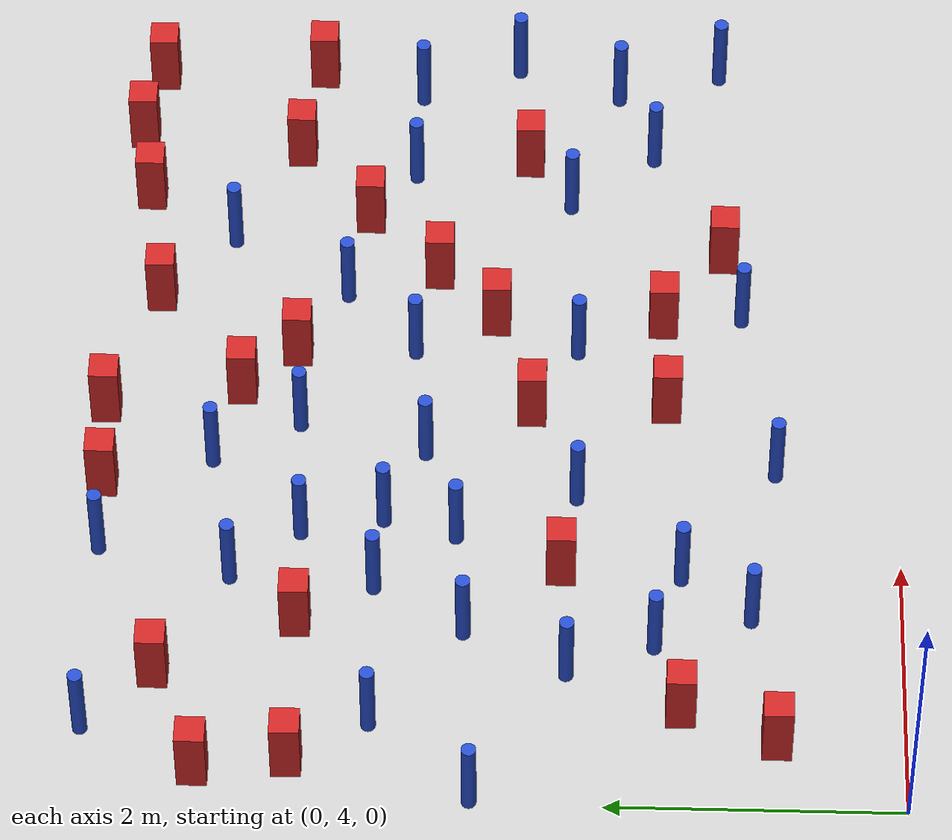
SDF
<sdf version="1.6">
 <world name="default">
  <model name="ground_plane">
   <static>1</static>
   <link name="link">
    <collision name="collision">
     <geometry><plane><normal>0 0 1</normal><size>100 100</size></plane></geometry>
     <surface><friction><ode><mu>100</mu><mu2>50</mu2></ode></friction></surface>
    </collision>
    <visual name="visual">
     <cast_shadows>0</cast_shadows>
     <geometry><plane><normal>0 0 1</normal><size>100 100</size></plane></geometry>
     <material>
      <ambient>1.0 1.0 1.0 1.0</ambient>
      <diffuse>0.8 0.8 0.8 1.0</diffuse>
      <specular>0.01 0.01 0.01 1.000000</specular>
     </material>
    </visual>
   </link>
  </model>
  <model name="pole_obstacle1">
   <static>true</static>
   <pose>1.38617735485 6.94967551149 7.38925637345e-09 -8.47170692799e-08 1.24976765033e-08 -1.74513093018e-07</pose>
   <link name="link">
    <pose>0 0 0.3 0 -0 0</pose>
    <inertial>
     <mass>1</mass>
     <inertia><ixx>0.145833</ixx><ixy>0</ixy><ixz>0</ixz><iyy>0.145833</iyy><iyz>0</iyz><izz>0.125</izz></inertia>
    </inertial>
    <collision name="collision">
     <geometry><cylinder><radius>0.05</radius><length>.6</length></cylinder></geometry>
    </collision>
    <visual name="visual">
     <geometry><cylinder><radius>0.05</radius><length>.6</length></cylinder></geometry>
     <material>
      <script><name>Gazebo/Blue</name><uri>file://media/materials/scripts/gazebo.material</uri></script>
     </material>
    </visual>
   </link>
  </model>
  <model name="pole_obstacle2">
   <static>true</static>
   <pose>2.82099505134 8.70505590829 7.38925637345e-09 -8.47170692793e-08 1.24976764408e-08 -1.74513093041e-07</pose>
   <link name="link">
    <pose>0 0 0.3 0 -0 0</pose>
    <inertial>
     <mass>1</mass>
     <inertia><ixx>0.145833</ixx><ixy>0</ixy><ixz>0</ixz><iyy>0.145833</iyy><iyz>0</iyz><izz>0.125</izz></inertia>
    </inertial>
    <collision name="collision">
     <geometry><cylinder><radius>0.05</radius><length>.6</length></cylinder></geometry>
    </collision>
    <visual name="visual">
     <geometry><cylinder><radius>0.05</radius><length>.6</length></cylinder></geometry>
     <material>
      <script><name>Gazebo/Blue</name><uri>file://media/materials/scripts/gazebo.material</uri></script>
     </material>
    </visual>
   </link>
  </model>
  <model name="square_post_obstacle6">
   <static>true</static>
   <pose>2.60345973972 9.44994082353 1.91545236811e-07 -7.35059704564e-06 1.12565212e-07 2.39332434364e-05</pose>
   <link name="link">
    <pose>0 0 0.25 0 -0 0</pose>
    <inertial>
     <mass>100</mass>
     <inertia>
      <ixx>0.166667</ixx>
      <ixy>0</ixy>
      <ixz>0</ixz>
      <iyy>0.166667</iyy>
      <iyz>0</iyz>
      <izz>0.166667</izz>
     </inertia>
    </inertial>
    <collision name="collision"><geometry><box><size>.2 .2 .5</size></box></geometry></collision>
    <visual name="visual">
     <geometry><box><size>.2 .2 .5</size></box></geometry>
     <material>
      <script><name>Gazebo/Red</name><uri>file://media/materials/scripts/gazebo.material</uri></script>
     </material>
    </visual>
   </link>
  </model>
  <model name="square_post_obstacle8">
   <static>true</static>
   <pose>1.90882104758 6.30090376429 1.91545236811e-07 -7.35059704564e-06 1.12565212e-07 2.39332434364e-05</pose>
   <link name="link">
    <pose>0 0 0.25 0 -0 0</pose>
    <inertial>
     <mass>100</mass>
     <inertia>
      <ixx>0.166667</ixx>
      <ixy>0</ixy>
      <ixz>0</ixz>
      <iyy>0.166667</iyy>
      <iyz>0</iyz>
      <izz>0.166667</izz>
     </inertia>
    </inertial>
    <collision name="collision"><geometry><box><size>.2 .2 .5</size></box></geometry></collision>
    <visual name="visual">
     <geometry><box><size>.2 .2 .5</size></box></geometry>
     <material>
      <script><name>Gazebo/Red</name><uri>file://media/materials/scripts/gazebo.material</uri></script>
     </material>
    </visual>
   </link>
  </model>
  <model name="pole_obstacle6">
   <static>true</static>
   <pose>5.6374758379 5.68235100578 7.38925637345e-09 -8.47170692796e-08 1.24976764786e-08 -1.74513093032e-07</pose>
   <link name="link">
    <pose>0 0 0.3 0 -0 0</pose>
    <inertial>
     <mass>1</mass>
     <inertia><ixx>0.145833</ixx><ixy>0</ixy><ixz>0</ixz><iyy>0.145833</iyy><iyz>0</iyz><izz>0.125</izz></inertia>
    </inertial>
    <collision name="collision">
     <geometry><cylinder><radius>0.05</radius><length>.6</length></cylinder></geometry>
    </collision>
    <visual name="visual">
     <geometry><cylinder><radius>0.05</radius><length>.6</length></cylinder></geometry>
     <material>
      <script><name>Gazebo/Blue</name><uri>file://media/materials/scripts/gazebo.material</uri></script>
     </material>
    </visual>
   </link>
  </model>
  <model name="square_post_obstacle15">
   <static>true</static>
   <pose>5.02085969405 7.69715390304 1.91545236811e-07 -7.35059704564e-06 1.12565212e-07 2.39332434364e-05</pose>
   <link name="link">
    <pose>0 0 0.25 0 -0 0</pose>
    <inertial>
     <mass>100</mass>
     <inertia>
      <ixx>0.166667</ixx>
      <ixy>0</ixy>
      <ixz>0</ixz>
      <iyy>0.166667</iyy>
      <iyz>0</iyz>
      <izz>0.166667</izz>
     </inertia>
    </inertial>
    <collision name="collision"><geometry><box><size>.2 .2 .5</size></box></geometry></collision>
    <visual name="visual">
     <geometry><box><size>.2 .2 .5</size></box></geometry>
     <material>
      <script><name>Gazebo/Red</name><uri>file://media/materials/scripts/gazebo.material</uri></script>
     </material>
    </visual>
   </link>
  </model>
  <model name="pole_obstacle11">
   <static>true</static>
   <pose>1.52577611234 5.01605634758 7.38925637345e-09 -8.47170692799e-08 1.24976765033e-08 -1.74513093018e-07</pose>
   <link name="link">
    <pose>0 0 0.3 0 -0 0</pose>
    <inertial>
     <mass>1</mass>
     <inertia><ixx>0.145833</ixx><ixy>0</ixy><ixz>0</ixz><iyy>0.145833</iyy><iyz>0</iyz><izz>0.125</izz></inertia>
    </inertial>
    <collision name="collision">
     <geometry><cylinder><radius>0.05</radius><length>.6</length></cylinder></geometry>
    </collision>
    <visual name="visual">
     <geometry><cylinder><radius>0.05</radius><length>.6</length></cylinder></geometry>
     <material>
      <script><name>Gazebo/Blue</name><uri>file://media/materials/scripts/gazebo.material</uri></script>
     </material>
    </visual>
   </link>
  </model>
  <model name="square_post_obstacle29">
   <static>true</static>
   <pose>1.44090018624 8.07722717517 1.91545236811e-07 -7.35059704564e-06 1.12565212e-07 2.39332434364e-05</pose>
   <link name="link">
    <pose>0 0 0.25 0 -0 0</pose>
    <inertial>
     <mass>100</mass>
     <inertia>
      <ixx>0.166667</ixx>
      <ixy>0</ixy>
      <ixz>0</ixz>
      <iyy>0.166667</iyy>
      <iyz>0</iyz>
      <izz>0.166667</izz>
     </inertia>
    </inertial>
    <collision name="collision"><geometry><box><size>.2 .2 .5</size></box></geometry></collision>
    <visual name="visual">
     <geometry><box><size>.2 .2 .5</size></box></geometry>
     <material>
      <script><name>Gazebo/Red</name><uri>file://media/materials/scripts/gazebo.material</uri></script>
     </material>
    </visual>
   </link>
  </model>
  <model name="square_post_obstacle39">
   <static>true</static>
   <pose>0.997660619453 9.00495069237 1.91545236811e-07 -7.35059704564e-06 1.12565212e-07 2.39332434364e-05</pose>
   <link name="link">
    <pose>0 0 0.25 0 -0 0</pose>
    <inertial>
     <mass>100</mass>
     <inertia>
      <ixx>0.166667</ixx>
      <ixy>0</ixy>
      <ixz>0</ixz>
      <iyy>0.166667</iyy>
      <iyz>0</iyz>
      <izz>0.166667</izz>
     </inertia>
    </inertial>
    <collision name="collision"><geometry><box><size>.2 .2 .5</size></box></geometry></collision>
    <visual name="visual">
     <geometry><box><size>.2 .2 .5</size></box></geometry>
     <material>
      <script><name>Gazebo/Red</name><uri>file://media/materials/scripts/gazebo.material</uri></script>
     </material>
    </visual>
   </link>
  </model>
  <model name="pole_obstacle43">
   <static>true</static>
   <pose>0.0226545835639 6.87596344298 7.38925637345e-09 -8.471706928e-08 1.24976765089e-08 -1.74513093016e-07</pose>
   <link name="link">
    <pose>0 0 0.3 0 -0 0</pose>
    <inertial>
     <mass>1</mass>
     <inertia><ixx>0.145833</ixx><ixy>0</ixy><ixz>0</ixz><iyy>0.145833</iyy><iyz>0</iyz><izz>0.125</izz></inertia>
    </inertial>
    <collision name="collision">
     <geometry><cylinder><radius>0.05</radius><length>.6</length></cylinder></geometry>
    </collision>
    <visual name="visual">
     <geometry><cylinder><radius>0.05</radius><length>.6</length></cylinder></geometry>
     <material>
      <script><name>Gazebo/Blue</name><uri>file://media/materials/scripts/gazebo.material</uri></script>
     </material>
    </visual>
   </link>
  </model>
  <model name="pole_obstacle46">
   <static>true</static>
   <pose>4.80852950306 8.64869174925 7.38925637345e-09 -8.471706928e-08 1.24976765081e-08 -1.74513093015e-07</pose>
   <link name="link">
    <pose>0 0 0.3 0 -0 0</pose>
    <inertial>
     <mass>1</mass>
     <inertia><ixx>0.145833</ixx><ixy>0</ixy><ixz>0</ixz><iyy>0.145833</iyy><iyz>0</iyz><izz>0.125</izz></inertia>
    </inertial>
    <collision name="collision">
     <geometry><cylinder><radius>0.05</radius><length>.6</length></cylinder></geometry>
    </collision>
    <visual name="visual">
     <geometry><cylinder><radius>0.05</radius><length>.6</length></cylinder></geometry>
     <material>
      <script><name>Gazebo/Blue</name><uri>file://media/materials/scripts/gazebo.material</uri></script>
     </material>
    </visual>
   </link>
  </model>
  <model name="pole_obstacle50">
   <static>true</static>
   <pose>2.91167073862 7.24360680341 7.38925637345e-09 -8.47170692798e-08 1.24976765033e-08 -1.74513093019e-07</pose>
   <link name="link">
    <pose>0 0 0.3 0 -0 0</pose>
    <inertial>
     <mass>1</mass>
     <inertia><ixx>0.145833</ixx><ixy>0</ixy><ixz>0</ixz><iyy>0.145833</iyy><iyz>0</iyz><izz>0.125</izz></inertia>
    </inertial>
    <collision name="collision">
     <geometry><cylinder><radius>0.05</radius><length>.6</length></cylinder></geometry>
    </collision>
    <visual name="visual">
     <geometry><cylinder><radius>0.05</radius><length>.6</length></cylinder></geometry>
     <material>
      <script><name>Gazebo/Blue</name><uri>file://media/materials/scripts/gazebo.material</uri></script>
     </material>
    </visual>
   </link>
  </model>
  <model name="pole_obstacle53">
   <static>true</static>
   <pose>4.31917198551 7.83075939397 7.38925637345e-09 -8.47170692796e-08 1.24976764786e-08 -1.74513093032e-07</pose>
   <link name="link">
    <pose>0 0 0.3 0 -0 0</pose>
    <inertial>
     <mass>1</mass>
     <inertia><ixx>0.145833</ixx><ixy>0</ixy><ixz>0</ixz><iyy>0.145833</iyy><iyz>0</iyz><izz>0.125</izz></inertia>
    </inertial>
    <collision name="collision">
     <geometry><cylinder><radius>0.05</radius><length>.6</length></cylinder></geometry>
    </collision>
    <visual name="visual">
     <geometry><cylinder><radius>0.05</radius><length>.6</length></cylinder></geometry>
     <material>
      <script><name>Gazebo/Blue</name><uri>file://media/materials/scripts/gazebo.material</uri></script>
     </material>
    </visual>
   </link>
  </model>
  <model name="pole_obstacle55">
   <static>true</static>
   <pose>2.77153676388 4.84070429658 7.38925637345e-09 -8.47170692798e-08 1.24976765033e-08 -1.74513093019e-07</pose>
   <link name="link">
    <pose>0 0 0.3 0 -0 0</pose>
    <inertial>
     <mass>1</mass>
     <inertia><ixx>0.145833</ixx><ixy>0</ixy><ixz>0</ixz><iyy>0.145833</iyy><iyz>0</iyz><izz>0.125</izz></inertia>
    </inertial>
    <collision name="collision">
     <geometry><cylinder><radius>0.05</radius><length>.6</length></cylinder></geometry>
    </collision>
    <visual name="visual">
     <geometry><cylinder><radius>0.05</radius><length>.6</length></cylinder></geometry>
     <material>
      <script><name>Gazebo/Blue</name><uri>file://media/materials/scripts/gazebo.material</uri></script>
     </material>
    </visual>
   </link>
  </model>
  <model name="square_post_obstacle62">
   <static>true</static>
   <pose>0.297467507627 8.08429707458 1.91545236811e-07 -7.35059704564e-06 1.12565212e-07 2.39332434364e-05</pose>
   <link name="link">
    <pose>0 0 0.25 0 -0 0</pose>
    <inertial>
     <mass>100</mass>
     <inertia>
      <ixx>0.166667</ixx>
      <ixy>0</ixy>
      <ixz>0</ixz>
      <iyy>0.166667</iyy>
      <iyz>0</iyz>
      <izz>0.166667</izz>
     </inertia>
    </inertial>
    <collision name="collision"><geometry><box><size>.2 .2 .5</size></box></geometry></collision>
    <visual name="visual">
     <geometry><box><size>.2 .2 .5</size></box></geometry>
     <material>
      <script><name>Gazebo/Red</name><uri>file://media/materials/scripts/gazebo.material</uri></script>
     </material>
    </visual>
   </link>
  </model>
  <model name="pole_obstacle83">
   <static>true</static>
   <pose>2.54194829397 6.20045673283 7.38925637345e-09 -8.47170692798e-08 1.24976765033e-08 -1.74513093019e-07</pose>
   <link name="link">
    <pose>0 0 0.3 0 -0 0</pose>
    <inertial>
     <mass>1</mass>
     <inertia><ixx>0.145833</ixx><ixy>0</ixy><ixz>0</ixz><iyy>0.145833</iyy><iyz>0</iyz><izz>0.125</izz></inertia>
    </inertial>
    <collision name="collision">
     <geometry><cylinder><radius>0.05</radius><length>.6</length></cylinder></geometry>
    </collision>
    <visual name="visual">
     <geometry><cylinder><radius>0.05</radius><length>.6</length></cylinder></geometry>
     <material>
      <script><name>Gazebo/Blue</name><uri>file://media/materials/scripts/gazebo.material</uri></script>
     </material>
    </visual>
   </link>
  </model>
  <model name="square_post_obstacle80">
   <static>true</static>
   <pose>4.26437415872 9.14009661663 1.91545236811e-07 -7.35059704564e-06 1.12565212e-07 2.39332434364e-05</pose>
   <link name="link">
    <pose>0 0 0.25 0 -0 0</pose>
    <inertial>
     <mass>100</mass>
     <inertia>
      <ixx>0.166667</ixx>
      <ixy>0</ixy>
      <ixz>0</ixz>
      <iyy>0.166667</iyy>
      <iyz>0</iyz>
      <izz>0.166667</izz>
     </inertia>
    </inertial>
    <collision name="collision"><geometry><box><size>.2 .2 .5</size></box></geometry></collision>
    <visual name="visual">
     <geometry><box><size>.2 .2 .5</size></box></geometry>
     <material>
      <script><name>Gazebo/Red</name><uri>file://media/materials/scripts/gazebo.material</uri></script>
     </material>
    </visual>
   </link>
  </model>
  <model name="pole_obstacle90">
   <static>true</static>
   <pose>2.32548733007 7.51141340628 7.38925637345e-09 -8.47170692798e-08 1.24976765033e-08 -1.74513093019e-07</pose>
   <link name="link">
    <pose>0 0 0.3 0 -0 0</pose>
    <inertial>
     <mass>1</mass>
     <inertia><ixx>0.145833</ixx><ixy>0</ixy><ixz>0</ixz><iyy>0.145833</iyy><iyz>0</iyz><izz>0.125</izz></inertia>
    </inertial>
    <collision name="collision">
     <geometry><cylinder><radius>0.05</radius><length>.6</length></cylinder></geometry>
    </collision>
    <visual name="visual">
     <geometry><cylinder><radius>0.05</radius><length>.6</length></cylinder></geometry>
     <material>
      <script><name>Gazebo/Blue</name><uri>file://media/materials/scripts/gazebo.material</uri></script>
     </material>
    </visual>
   </link>
  </model>
  <model name="pole_obstacle92">
   <static>true</static>
   <pose>0.622189427786 7.55705514052 7.38925637345e-09 -8.471706928e-08 1.24976765086e-08 -1.74513093015e-07</pose>
   <link name="link">
    <pose>0 0 0.3 0 -0 0</pose>
    <inertial>
     <mass>1</mass>
     <inertia><ixx>0.145833</ixx><ixy>0</ixy><ixz>0</ixz><iyy>0.145833</iyy><iyz>0</iyz><izz>0.125</izz></inertia>
    </inertial>
    <collision name="collision">
     <geometry><cylinder><radius>0.05</radius><length>.6</length></cylinder></geometry>
    </collision>
    <visual name="visual">
     <geometry><cylinder><radius>0.05</radius><length>.6</length></cylinder></geometry>
     <material>
      <script><name>Gazebo/Blue</name><uri>file://media/materials/scripts/gazebo.material</uri></script>
     </material>
    </visual>
   </link>
  </model>
  <model name="pole_obstacle93">
   <static>true</static>
   <pose>2.04850097007 9.44147479068 7.38925637345e-09 -8.47170692794e-08 1.24976764477e-08 -1.74513093037e-07</pose>
   <link name="link">
    <pose>0 0 0.3 0 -0 0</pose>
    <inertial>
     <mass>1</mass>
     <inertia><ixx>0.145833</ixx><ixy>0</ixy><ixz>0</ixz><iyy>0.145833</iyy><iyz>0</iyz><izz>0.125</izz></inertia>
    </inertial>
    <collision name="collision">
     <geometry><cylinder><radius>0.05</radius><length>.6</length></cylinder></geometry>
    </collision>
    <visual name="visual">
     <geometry><cylinder><radius>0.05</radius><length>.6</length></cylinder></geometry>
     <material>
      <script><name>Gazebo/Blue</name><uri>file://media/materials/scripts/gazebo.material</uri></script>
     </material>
    </visual>
   </link>
  </model>
  <model name="pole_obstacle95">
   <static>true</static>
   <pose>1.81883779383 8.53875708639 7.38925637345e-09 -8.47170692798e-08 1.24976764881e-08 -1.74513093027e-07</pose>
   <link name="link">
    <pose>0 0 0.3 0 -0 0</pose>
    <inertial>
     <mass>1</mass>
     <inertia><ixx>0.145833</ixx><ixy>0</ixy><ixz>0</ixz><iyy>0.145833</iyy><iyz>0</iyz><izz>0.125</izz></inertia>
    </inertial>
    <collision name="collision">
     <geometry><cylinder><radius>0.05</radius><length>.6</length></cylinder></geometry>
    </collision>
    <visual name="visual">
     <geometry><cylinder><radius>0.05</radius><length>.6</length></cylinder></geometry>
     <material>
      <script><name>Gazebo/Blue</name><uri>file://media/materials/scripts/gazebo.material</uri></script>
     </material>
    </visual>
   </link>
  </model>
  <model name="pole_obstacle103">
   <static>true</static>
   <pose>6.20021826138 7.35681397927 7.38925637345e-09 -8.47170692796e-08 1.24976764786e-08 -1.74513093032e-07</pose>
   <link name="link">
    <pose>0 0 0.3 0 -0 0</pose>
    <inertial>
     <mass>1</mass>
     <inertia><ixx>0.145833</ixx><ixy>0</ixy><ixz>0</ixz><iyy>0.145833</iyy><iyz>0</iyz><izz>0.125</izz></inertia>
    </inertial>
    <collision name="collision">
     <geometry><cylinder><radius>0.05</radius><length>.6</length></cylinder></geometry>
    </collision>
    <visual name="visual">
     <geometry><cylinder><radius>0.05</radius><length>.6</length></cylinder></geometry>
     <material>
      <script><name>Gazebo/Blue</name><uri>file://media/materials/scripts/gazebo.material</uri></script>
     </material>
    </visual>
   </link>
  </model>
  <model name="square_post_obstacle92">
   <static>true</static>
   <pose>4.08900367309 6.7829099407 1.91545236811e-07 -7.35059704564e-06 1.12565212e-07 2.39332434364e-05</pose>
   <link name="link">
    <pose>0 0 0.25 0 -0 0</pose>
    <inertial>
     <mass>100</mass>
     <inertia>
      <ixx>0.166667</ixx>
      <ixy>0</ixy>
      <ixz>0</ixz>
      <iyy>0.166667</iyy>
      <iyz>0</iyz>
      <izz>0.166667</izz>
     </inertia>
    </inertial>
    <collision name="collision"><geometry><box><size>.2 .2 .5</size></box></geometry></collision>
    <visual name="visual">
     <geometry><box><size>.2 .2 .5</size></box></geometry>
     <material>
      <script><name>Gazebo/Red</name><uri>file://media/materials/scripts/gazebo.material</uri></script>
     </material>
    </visual>
   </link>
  </model>
  <model name="square_post_obstacle93">
   <static>true</static>
   <pose>4.69619093316 5.19104566608 1.91545236811e-07 -7.35059704564e-06 1.12565212e-07 2.39332434364e-05</pose>
   <link name="link">
    <pose>0 0 0.25 0 -0 0</pose>
    <inertial>
     <mass>100</mass>
     <inertia>
      <ixx>0.166667</ixx>
      <ixy>0</ixy>
      <ixz>0</ixz>
      <iyy>0.166667</iyy>
      <iyz>0</iyz>
      <izz>0.166667</izz>
     </inertia>
    </inertial>
    <collision name="collision"><geometry><box><size>.2 .2 .5</size></box></geometry></collision>
    <visual name="visual">
     <geometry><box><size>.2 .2 .5</size></box></geometry>
     <material>
      <script><name>Gazebo/Red</name><uri>file://media/materials/scripts/gazebo.material</uri></script>
     </material>
    </visual>
   </link>
  </model>
  <model name="pole_obstacle105">
   <static>true</static>
   <pose>1.86741217066 5.48674981423 7.38925637345e-09 -8.47170692799e-08 1.24976765033e-08 -1.74513093018e-07</pose>
   <link name="link">
    <pose>0 0 0.3 0 -0 0</pose>
    <inertial>
     <mass>1</mass>
     <inertia><ixx>0.145833</ixx><ixy>0</ixy><ixz>0</ixz><iyy>0.145833</iyy><iyz>0</iyz><izz>0.125</izz></inertia>
    </inertial>
    <collision name="collision">
     <geometry><cylinder><radius>0.05</radius><length>.6</length></cylinder></geometry>
    </collision>
    <visual name="visual">
     <geometry><cylinder><radius>0.05</radius><length>.6</length></cylinder></geometry>
     <material>
      <script><name>Gazebo/Blue</name><uri>file://media/materials/scripts/gazebo.material</uri></script>
     </material>
    </visual>
   </link>
  </model>
  <model name="square_post_obstacle96">
   <static>true</static>
   <pose>6.36738882767 9.2388178071 1.91545236811e-07 -7.35059704564e-06 1.12565212e-07 2.39332434364e-05</pose>
   <link name="link">
    <pose>0 0 0.25 0 -0 0</pose>
    <inertial>
     <mass>100</mass>
     <inertia>
      <ixx>0.166667</ixx>
      <ixy>0</ixy>
      <ixz>0</ixz>
      <iyy>0.166667</iyy>
      <iyz>0</iyz>
      <izz>0.166667</izz>
     </inertia>
    </inertial>
    <collision name="collision"><geometry><box><size>.2 .2 .5</size></box></geometry></collision>
    <visual name="visual">
     <geometry><box><size>.2 .2 .5</size></box></geometry>
     <material>
      <script><name>Gazebo/Red</name><uri>file://media/materials/scripts/gazebo.material</uri></script>
     </material>
    </visual>
   </link>
  </model>
  <model name="pole_obstacle116">
   <static>true</static>
   <pose>3.8102721718 7.34044697927 7.38925637345e-09 -8.47170692798e-08 1.24976765033e-08 -1.74513093019e-07</pose>
   <link name="link">
    <pose>0 0 0.3 0 -0 0</pose>
    <inertial>
     <mass>1</mass>
     <inertia><ixx>0.145833</ixx><ixy>0</ixy><ixz>0</ixz><iyy>0.145833</iyy><iyz>0</iyz><izz>0.125</izz></inertia>
    </inertial>
    <collision name="collision">
     <geometry><cylinder><radius>0.05</radius><length>.6</length></cylinder></geometry>
    </collision>
    <visual name="visual">
     <geometry><cylinder><radius>0.05</radius><length>.6</length></cylinder></geometry>
     <material>
      <script><name>Gazebo/Blue</name><uri>file://media/materials/scripts/gazebo.material</uri></script>
     </material>
    </visual>
   </link>
  </model>
  <model name="pole_obstacle126">
   <static>true</static>
   <pose>1.75095196548 7.56206580184 7.38925637345e-09 -8.47170692799e-08 1.24976765033e-08 -1.74513093018e-07</pose>
   <link name="link">
    <pose>0 0 0.3 0 -0 0</pose>
    <inertial>
     <mass>1</mass>
     <inertia><ixx>0.145833</ixx><ixy>0</ixy><ixz>0</ixz><iyy>0.145833</iyy><iyz>0</iyz><izz>0.125</izz></inertia>
    </inertial>
    <collision name="collision">
     <geometry><cylinder><radius>0.05</radius><length>.6</length></cylinder></geometry>
    </collision>
    <visual name="visual">
     <geometry><cylinder><radius>0.05</radius><length>.6</length></cylinder></geometry>
     <material>
      <script><name>Gazebo/Blue</name><uri>file://media/materials/scripts/gazebo.material</uri></script>
     </material>
    </visual>
   </link>
  </model>
  <model name="pole_obstacle130">
   <static>true</static>
   <pose>4.14676710304 5.06593214929 7.38925637345e-09 -8.47170692796e-08 1.24976764786e-08 -1.74513093032e-07</pose>
   <link name="link">
    <pose>0 0 0.3 0 -0 0</pose>
    <inertial>
     <mass>1</mass>
     <inertia><ixx>0.145833</ixx><ixy>0</ixy><ixz>0</ixz><iyy>0.145833</iyy><iyz>0</iyz><izz>0.125</izz></inertia>
    </inertial>
    <collision name="collision">
     <geometry><cylinder><radius>0.05</radius><length>.6</length></cylinder></geometry>
    </collision>
    <visual name="visual">
     <geometry><cylinder><radius>0.05</radius><length>.6</length></cylinder></geometry>
     <material>
      <script><name>Gazebo/Blue</name><uri>file://media/materials/scripts/gazebo.material</uri></script>
     </material>
    </visual>
   </link>
  </model>
  <model name="pole_obstacle136">
   <static>true</static>
   <pose>3.14598286467 8.11463901216 7.38925637345e-09 -8.47170692793e-08 1.24976764408e-08 -1.74513093041e-07</pose>
   <link name="link">
    <pose>0 0 0.3 0 -0 0</pose>
    <inertial>
     <mass>1</mass>
     <inertia><ixx>0.145833</ixx><ixy>0</ixy><ixz>0</ixz><iyy>0.145833</iyy><iyz>0</iyz><izz>0.125</izz></inertia>
    </inertial>
    <collision name="collision">
     <geometry><cylinder><radius>0.05</radius><length>.6</length></cylinder></geometry>
    </collision>
    <visual name="visual">
     <geometry><cylinder><radius>0.05</radius><length>.6</length></cylinder></geometry>
     <material>
      <script><name>Gazebo/Blue</name><uri>file://media/materials/scripts/gazebo.material</uri></script>
     </material>
    </visual>
   </link>
  </model>
  <model name="square_post_obstacle122">
   <static>true</static>
   <pose>5.20871720366 9.26907681531 1.91545236811e-07 -7.35059704564e-06 1.12565212e-07 2.39332434364e-05</pose>
   <link name="link">
    <pose>0 0 0.25 0 -0 0</pose>
    <inertial>
     <mass>100</mass>
     <inertia>
      <ixx>0.166667</ixx>
      <ixy>0</ixy>
      <ixz>0</ixz>
      <iyy>0.166667</iyy>
      <iyz>0</iyz>
      <izz>0.166667</izz>
     </inertia>
    </inertial>
    <collision name="collision"><geometry><box><size>.2 .2 .5</size></box></geometry></collision>
    <visual name="visual">
     <geometry><box><size>.2 .2 .5</size></box></geometry>
     <material>
      <script><name>Gazebo/Red</name><uri>file://media/materials/scripts/gazebo.material</uri></script>
     </material>
    </visual>
   </link>
  </model>
  <model name="square_post_obstacle139">
   <static>true</static>
   <pose>0.214894871564 8.69719775093 1.91545236811e-07 -7.35059704564e-06 1.12565212e-07 2.39332434364e-05</pose>
   <link name="link">
    <pose>0 0 0.25 0 -0 0</pose>
    <inertial>
     <mass>100</mass>
     <inertia>
      <ixx>0.166667</ixx>
      <ixy>0</ixy>
      <ixz>0</ixz>
      <iyy>0.166667</iyy>
      <iyz>0</iyz>
      <izz>0.166667</izz>
     </inertia>
    </inertial>
    <collision name="collision"><geometry><box><size>.2 .2 .5</size></box></geometry></collision>
    <visual name="visual">
     <geometry><box><size>.2 .2 .5</size></box></geometry>
     <material>
      <script><name>Gazebo/Red</name><uri>file://media/materials/scripts/gazebo.material</uri></script>
     </material>
    </visual>
   </link>
  </model>
  <model name="pole_obstacle152">
   <static>true</static>
   <pose>2.19189289864 7.01632882993 7.38925637345e-09 -8.47170692798e-08 1.24976765033e-08 -1.74513093019e-07</pose>
   <link name="link">
    <pose>0 0 0.3 0 -0 0</pose>
    <inertial>
     <mass>1</mass>
     <inertia><ixx>0.145833</ixx><ixy>0</ixy><ixz>0</ixz><iyy>0.145833</iyy><iyz>0</iyz><izz>0.125</izz></inertia>
    </inertial>
    <collision name="collision">
     <geometry><cylinder><radius>0.05</radius><length>.6</length></cylinder></geometry>
    </collision>
    <visual name="visual">
     <geometry><cylinder><radius>0.05</radius><length>.6</length></cylinder></geometry>
     <material>
      <script><name>Gazebo/Blue</name><uri>file://media/materials/scripts/gazebo.material</uri></script>
     </material>
    </visual>
   </link>
  </model>
  <model name="square_post_obstacle144">
   <static>true</static>
   <pose>3.27984294806 6.52175754776 1.91545236811e-07 -7.35059704564e-06 1.12565212e-07 2.39332434364e-05</pose>
   <link name="link">
    <pose>0 0 0.25 0 -0 0</pose>
    <inertial>
     <mass>100</mass>
     <inertia>
      <ixx>0.166667</ixx>
      <ixy>0</ixy>
      <ixz>0</ixz>
      <iyy>0.166667</iyy>
      <iyz>0</iyz>
      <izz>0.166667</izz>
     </inertia>
    </inertial>
    <collision name="collision"><geometry><box><size>.2 .2 .5</size></box></geometry></collision>
    <visual name="visual">
     <geometry><box><size>.2 .2 .5</size></box></geometry>
     <material>
      <script><name>Gazebo/Red</name><uri>file://media/materials/scripts/gazebo.material</uri></script>
     </material>
    </visual>
   </link>
  </model>
  <model name="pole_obstacle155">
   <static>true</static>
   <pose>2.20641074816 8.07365278555 7.38925637345e-09 -8.47170692793e-08 1.24976764408e-08 -1.74513093041e-07</pose>
   <link name="link">
    <pose>0 0 0.3 0 -0 0</pose>
    <inertial>
     <mass>1</mass>
     <inertia><ixx>0.145833</ixx><ixy>0</ixy><ixz>0</ixz><iyy>0.145833</iyy><iyz>0</iyz><izz>0.125</izz></inertia>
    </inertial>
    <collision name="collision">
     <geometry><cylinder><radius>0.05</radius><length>.6</length></cylinder></geometry>
    </collision>
    <visual name="visual">
     <geometry><cylinder><radius>0.05</radius><length>.6</length></cylinder></geometry>
     <material>
      <script><name>Gazebo/Blue</name><uri>file://media/materials/scripts/gazebo.material</uri></script>
     </material>
    </visual>
   </link>
  </model>
  <model name="square_post_obstacle146">
   <static>true</static>
   <pose>0.746665981641 5.49247878839 1.91545236811e-07 -7.35059704564e-06 1.12565212e-07 2.39332434364e-05</pose>
   <link name="link">
    <pose>0 0 0.25 0 -0 0</pose>
    <inertial>
     <mass>100</mass>
     <inertia>
      <ixx>0.166667</ixx>
      <ixy>0</ixy>
      <ixz>0</ixz>
      <iyy>0.166667</iyy>
      <iyz>0</iyz>
      <izz>0.166667</izz>
     </inertia>
    </inertial>
    <collision name="collision"><geometry><box><size>.2 .2 .5</size></box></geometry></collision>
    <visual name="visual">
     <geometry><box><size>.2 .2 .5</size></box></geometry>
     <material>
      <script><name>Gazebo/Red</name><uri>file://media/materials/scripts/gazebo.material</uri></script>
     </material>
    </visual>
   </link>
  </model>
  <model name="pole_obstacle156">
   <static>true</static>
   <pose>1.05886066098 6.25543073985 7.38925637345e-09 -8.47170692799e-08 1.24976765033e-08 -1.74513093018e-07</pose>
   <link name="link">
    <pose>0 0 0.3 0 -0 0</pose>
    <inertial>
     <mass>1</mass>
     <inertia><ixx>0.145833</ixx><ixy>0</ixy><ixz>0</ixz><iyy>0.145833</iyy><iyz>0</iyz><izz>0.125</izz></inertia>
    </inertial>
    <collision name="collision">
     <geometry><cylinder><radius>0.05</radius><length>.6</length></cylinder></geometry>
    </collision>
    <visual name="visual">
     <geometry><cylinder><radius>0.05</radius><length>.6</length></cylinder></geometry>
     <material>
      <script><name>Gazebo/Blue</name><uri>file://media/materials/scripts/gazebo.material</uri></script>
     </material>
    </visual>
   </link>
  </model>
  <model name="pole_obstacle159">
   <static>true</static>
   <pose>6.48243736774 6.66173350181 7.38925637345e-09 -8.47170692796e-08 1.24976764786e-08 -1.74513093032e-07</pose>
   <link name="link">
    <pose>0 0 0.3 0 -0 0</pose>
    <inertial>
     <mass>1</mass>
     <inertia><ixx>0.145833</ixx><ixy>0</ixy><ixz>0</ixz><iyy>0.145833</iyy><iyz>0</iyz><izz>0.125</izz></inertia>
    </inertial>
    <collision name="collision">
     <geometry><cylinder><radius>0.05</radius><length>.6</length></cylinder></geometry>
    </collision>
    <visual name="visual">
     <geometry><cylinder><radius>0.05</radius><length>.6</length></cylinder></geometry>
     <material>
      <script><name>Gazebo/Blue</name><uri>file://media/materials/scripts/gazebo.material</uri></script>
     </material>
    </visual>
   </link>
  </model>
  <model name="square_post_obstacle153">
   <static>true</static>
   <pose>3.32974154573 5.59021829066 1.91545236811e-07 -7.35059704564e-06 1.12565212e-07 2.39332434364e-05</pose>
   <link name="link">
    <pose>0 0 0.25 0 -0 0</pose>
    <inertial>
     <mass>100</mass>
     <inertia>
      <ixx>0.166667</ixx>
      <ixy>0</ixy>
      <ixz>0</ixz>
      <iyy>0.166667</iyy>
      <iyz>0</iyz>
      <izz>0.166667</izz>
     </inertia>
    </inertial>
    <collision name="collision"><geometry><box><size>.2 .2 .5</size></box></geometry></collision>
    <visual name="visual">
     <geometry><box><size>.2 .2 .5</size></box></geometry>
     <material>
      <script><name>Gazebo/Red</name><uri>file://media/materials/scripts/gazebo.material</uri></script>
     </material>
    </visual>
   </link>
  </model>
  <model name="square_post_obstacle156">
   <static>true</static>
   <pose>4.08779988405 5.61485198923 1.91545236811e-07 -7.35059704564e-06 1.12565212e-07 2.39332434364e-05</pose>
   <link name="link">
    <pose>0 0 0.25 0 -0 0</pose>
    <inertial>
     <mass>100</mass>
     <inertia>
      <ixx>0.166667</ixx>
      <ixy>0</ixy>
      <ixz>0</ixz>
      <iyy>0.166667</iyy>
      <iyz>0</iyz>
      <izz>0.166667</izz>
     </inertia>
    </inertial>
    <collision name="collision"><geometry><box><size>.2 .2 .5</size></box></geometry></collision>
    <visual name="visual">
     <geometry><box><size>.2 .2 .5</size></box></geometry>
     <material>
      <script><name>Gazebo/Red</name><uri>file://media/materials/scripts/gazebo.material</uri></script>
     </material>
    </visual>
   </link>
  </model>
  <model name="pole_obstacle168">
   <static>true</static>
   <pose>5.44722326192 7.3836852141 7.38925637345e-09 -8.47170692796e-08 1.24976764786e-08 -1.74513093032e-07</pose>
   <link name="link">
    <pose>0 0 0.3 0 -0 0</pose>
    <inertial>
     <mass>1</mass>
     <inertia><ixx>0.145833</ixx><ixy>0</ixy><ixz>0</ixz><iyy>0.145833</iyy><iyz>0</iyz><izz>0.125</izz></inertia>
    </inertial>
    <collision name="collision">
     <geometry><cylinder><radius>0.05</radius><length>.6</length></cylinder></geometry>
    </collision>
    <visual name="visual">
     <geometry><cylinder><radius>0.05</radius><length>.6</length></cylinder></geometry>
     <material>
      <script><name>Gazebo/Blue</name><uri>file://media/materials/scripts/gazebo.material</uri></script>
     </material>
    </visual>
   </link>
  </model>
  <model name="pole_obstacle174">
   <static>true</static>
   <pose>5.17526113965 6.27134608792 7.38925637345e-09 -8.47170692796e-08 1.24976764786e-08 -1.74513093032e-07</pose>
   <link name="link">
    <pose>0 0 0.3 0 -0 0</pose>
    <inertial>
     <mass>1</mass>
     <inertia><ixx>0.145833</ixx><ixy>0</ixy><ixz>0</ixz><iyy>0.145833</iyy><iyz>0</iyz><izz>0.125</izz></inertia>
    </inertial>
    <collision name="collision">
     <geometry><cylinder><radius>0.05</radius><length>.6</length></cylinder></geometry>
    </collision>
    <visual name="visual">
     <geometry><cylinder><radius>0.05</radius><length>.6</length></cylinder></geometry>
     <material>
      <script><name>Gazebo/Blue</name><uri>file://media/materials/scripts/gazebo.material</uri></script>
     </material>
    </visual>
   </link>
  </model>
  <model name="square_post_obstacle164">
   <static>true</static>
   <pose>5.6433563337 8.21068782223 1.91545236811e-07 -7.35059704564e-06 1.12565212e-07 2.39332434364e-05</pose>
   <link name="link">
    <pose>0 0 0.25 0 -0 0</pose>
    <inertial>
     <mass>100</mass>
     <inertia>
      <ixx>0.166667</ixx>
      <ixy>0</ixy>
      <ixz>0</ixz>
      <iyy>0.166667</iyy>
      <iyz>0</iyz>
      <izz>0.166667</izz>
     </inertia>
    </inertial>
    <collision name="collision"><geometry><box><size>.2 .2 .5</size></box></geometry></collision>
    <visual name="visual">
     <geometry><box><size>.2 .2 .5</size></box></geometry>
     <material>
      <script><name>Gazebo/Red</name><uri>file://media/materials/scripts/gazebo.material</uri></script>
     </material>
    </visual>
   </link>
  </model>
  <model name="pole_obstacle185">
   <static>true</static>
   <pose>6.44437835134 5.21520866982 7.38925637345e-09 -8.47170692796e-08 1.24976764786e-08 -1.74513093032e-07</pose>
   <link name="link">
    <pose>0 0 0.3 0 -0 0</pose>
    <inertial>
     <mass>1</mass>
     <inertia><ixx>0.145833</ixx><ixy>0</ixy><ixz>0</ixz><iyy>0.145833</iyy><iyz>0</iyz><izz>0.125</izz></inertia>
    </inertial>
    <collision name="collision">
     <geometry><cylinder><radius>0.05</radius><length>.6</length></cylinder></geometry>
    </collision>
    <visual name="visual">
     <geometry><cylinder><radius>0.05</radius><length>.6</length></cylinder></geometry>
     <material>
      <script><name>Gazebo/Blue</name><uri>file://media/materials/scripts/gazebo.material</uri></script>
     </material>
    </visual>
   </link>
  </model>
  <model name="pole_obstacle187">
   <static>true</static>
   <pose>3.8314260279 6.20664322139 7.38925637345e-09 -8.47170692798e-08 1.24976765033e-08 -1.74513093019e-07</pose>
   <link name="link">
    <pose>0 0 0.3 0 -0 0</pose>
    <inertial>
     <mass>1</mass>
     <inertia><ixx>0.145833</ixx><ixy>0</ixy><ixz>0</ixz><iyy>0.145833</iyy><iyz>0</iyz><izz>0.125</izz></inertia>
    </inertial>
    <collision name="collision">
     <geometry><cylinder><radius>0.05</radius><length>.6</length></cylinder></geometry>
    </collision>
    <visual name="visual">
     <geometry><cylinder><radius>0.05</radius><length>.6</length></cylinder></geometry>
     <material>
      <script><name>Gazebo/Blue</name><uri>file://media/materials/scripts/gazebo.material</uri></script>
     </material>
    </visual>
   </link>
  </model>
  <model name="square_post_obstacle175">
   <static>true</static>
   <pose>3.25365318954 9.46577851993 1.91545236811e-07 -7.35059704564e-06 1.12565212e-07 2.39332434364e-05</pose>
   <link name="link">
    <pose>0 0 0.25 0 -0 0</pose>
    <inertial>
     <mass>100</mass>
     <inertia>
      <ixx>0.166667</ixx>
      <ixy>0</ixy>
      <ixz>0</ixz>
      <iyy>0.166667</iyy>
      <iyz>0</iyz>
      <izz>0.166667</izz>
     </inertia>
    </inertial>
    <collision name="collision"><geometry><box><size>.2 .2 .5</size></box></geometry></collision>
    <visual name="visual">
     <geometry><box><size>.2 .2 .5</size></box></geometry>
     <material>
      <script><name>Gazebo/Red</name><uri>file://media/materials/scripts/gazebo.material</uri></script>
     </material>
    </visual>
   </link>
  </model>
  <model name="square_post_obstacle180">
   <static>true</static>
   <pose>5.79208630082 9.35437103556 1.91545236811e-07 -7.35059704564e-06 1.12565212e-07 2.39332434364e-05</pose>
   <link name="link">
    <pose>0 0 0.25 0 -0 0</pose>
    <inertial>
     <mass>100</mass>
     <inertia>
      <ixx>0.166667</ixx>
      <ixy>0</ixy>
      <ixz>0</ixz>
      <iyy>0.166667</iyy>
      <iyz>0</iyz>
      <izz>0.166667</izz>
     </inertia>
    </inertial>
    <collision name="collision"><geometry><box><size>.2 .2 .5</size></box></geometry></collision>
    <visual name="visual">
     <geometry><box><size>.2 .2 .5</size></box></geometry>
     <material>
      <script><name>Gazebo/Red</name><uri>file://media/materials/scripts/gazebo.material</uri></script>
     </material>
    </visual>
   </link>
  </model>
  <model name="square_post_obstacle186">
   <static>true</static>
   <pose>3.43320889641 8.52911310772 1.91545236811e-07 -7.35059704564e-06 1.12565212e-07 2.39332434364e-05</pose>
   <link name="link">
    <pose>0 0 0.25 0 -0 0</pose>
    <inertial>
     <mass>100</mass>
     <inertia>
      <ixx>0.166667</ixx>
      <ixy>0</ixy>
      <ixz>0</ixz>
      <iyy>0.166667</iyy>
      <iyz>0</iyz>
      <izz>0.166667</izz>
     </inertia>
    </inertial>
    <collision name="collision"><geometry><box><size>.2 .2 .5</size></box></geometry></collision>
    <visual name="visual">
     <geometry><box><size>.2 .2 .5</size></box></geometry>
     <material>
      <script><name>Gazebo/Red</name><uri>file://media/materials/scripts/gazebo.material</uri></script>
     </material>
    </visual>
   </link>
  </model>
  <model name="square_post_obstacle190">
   <static>true</static>
   <pose>4.50993431058 7.1915148122 1.91545236811e-07 -7.35059704564e-06 1.12565212e-07 2.39332434364e-05</pose>
   <link name="link">
    <pose>0 0 0.25 0 -0 0</pose>
    <inertial>
     <mass>100</mass>
     <inertia>
      <ixx>0.166667</ixx>
      <ixy>0</ixy>
      <ixz>0</ixz>
      <iyy>0.166667</iyy>
      <iyz>0</iyz>
      <izz>0.166667</izz>
     </inertia>
    </inertial>
    <collision name="collision"><geometry><box><size>.2 .2 .5</size></box></geometry></collision>
    <visual name="visual">
     <geometry><box><size>.2 .2 .5</size></box></geometry>
     <material>
      <script><name>Gazebo/Red</name><uri>file://media/materials/scripts/gazebo.material</uri></script>
     </material>
    </visual>
   </link>
  </model>
  <model name="square_post_obstacle196">
   <static>true</static>
   <pose>6.41058871207 8.080682566 1.91545236811e-07 -7.35059704564e-06 1.12565212e-07 2.39332434364e-05</pose>
   <link name="link">
    <pose>0 0 0.25 0 -0 0</pose>
    <inertial>
     <mass>100</mass>
     <inertia>
      <ixx>0.166667</ixx>
      <ixy>0</ixy>
      <ixz>0</ixz>
      <iyy>0.166667</iyy>
      <iyz>0</iyz>
      <izz>0.166667</izz>
     </inertia>
    </inertial>
    <collision name="collision"><geometry><box><size>.2 .2 .5</size></box></geometry></collision>
    <visual name="visual">
     <geometry><box><size>.2 .2 .5</size></box></geometry>
     <material>
      <script><name>Gazebo/Red</name><uri>file://media/materials/scripts/gazebo.material</uri></script>
     </material>
    </visual>
   </link>
  </model>
  <model name="square_post_obstacle201">
   <static>true</static>
   <pose>3.78415825741 8.16159059734 1.91545236811e-07 -7.35059704564e-06 1.12565212e-07 2.39332434364e-05</pose>
   <link name="link">
    <pose>0 0 0.25 0 -0 0</pose>
    <inertial>
     <mass>100</mass>
     <inertia>
      <ixx>0.166667</ixx>
      <ixy>0</ixy>
      <ixz>0</ixz>
      <iyy>0.166667</iyy>
      <iyz>0</iyz>
      <izz>0.166667</izz>
     </inertia>
    </inertial>
    <collision name="collision"><geometry><box><size>.2 .2 .5</size></box></geometry></collision>
    <visual name="visual">
     <geometry><box><size>.2 .2 .5</size></box></geometry>
     <material>
      <script><name>Gazebo/Red</name><uri>file://media/materials/scripts/gazebo.material</uri></script>
     </material>
    </visual>
   </link>
  </model>
  <model name="pole_obstacle188">
   <static>true</static>
   <pose>6.22388462882 5.93575556665 7.38925637345e-09 -8.47170692796e-08 1.24976764786e-08 -1.74513093032e-07</pose>
   <link name="link">
    <pose>0 0 0.3 0 -0 0</pose>
    <inertial>
     <mass>1</mass>
     <inertia><ixx>0.145833</ixx><ixy>0</ixy><ixz>0</ixz><iyy>0.145833</iyy><iyz>0</iyz><izz>0.125</izz></inertia>
    </inertial>
    <collision name="collision">
     <geometry><cylinder><radius>0.05</radius><length>.6</length></cylinder></geometry>
    </collision>
    <visual name="visual">
     <geometry><cylinder><radius>0.05</radius><length>.6</length></cylinder></geometry>
     <material>
      <script><name>Gazebo/Blue</name><uri>file://media/materials/scripts/gazebo.material</uri></script>
     </material>
    </visual>
   </link>
  </model>
  <model name="pole_obstacle202">
   <static>true</static>
   <pose>1.29215039227 5.66696128035 7.38925637345e-09 -8.47170692799e-08 1.24976765033e-08 -1.74513093018e-07</pose>
   <link name="link">
    <pose>0 0 0.3 0 -0 0</pose>
    <inertial>
     <mass>1</mass>
     <inertia><ixx>0.145833</ixx><ixy>0</ixy><ixz>0</ixz><iyy>0.145833</iyy><iyz>0</iyz><izz>0.125</izz></inertia>
    </inertial>
    <collision name="collision">
     <geometry><cylinder><radius>0.05</radius><length>.6</length></cylinder></geometry>
    </collision>
    <visual name="visual">
     <geometry><cylinder><radius>0.05</radius><length>.6</length></cylinder></geometry>
     <material>
      <script><name>Gazebo/Blue</name><uri>file://media/materials/scripts/gazebo.material</uri></script>
     </material>
    </visual>
   </link>
  </model>
  <model name="pole_obstacle206">
   <static>true</static>
   <pose>0.555488180862 9.463145466 7.38925637345e-09 -8.47170692797e-08 1.249767648e-08 -1.74513093032e-07</pose>
   <link name="link">
    <pose>0 0 0.3 0 -0 0</pose>
    <inertial>
     <mass>1</mass>
     <inertia><ixx>0.145833</ixx><ixy>0</ixy><ixz>0</ixz><iyy>0.145833</iyy><iyz>0</iyz><izz>0.125</izz></inertia>
    </inertial>
    <collision name="collision">
     <geometry><cylinder><radius>0.05</radius><length>.6</length></cylinder></geometry>
    </collision>
    <visual name="visual">
     <geometry><cylinder><radius>0.05</radius><length>.6</length></cylinder></geometry>
     <material>
      <script><name>Gazebo/Blue</name><uri>file://media/materials/scripts/gazebo.material</uri></script>
     </material>
    </visual>
   </link>
  </model>
  <model name="square_post_obstacle209">
   <static>true</static>
   <pose>5.57682010645 6.57194445616 1.91545236811e-07 -7.35059704564e-06 1.12565212e-07 2.39332434364e-05</pose>
   <link name="link">
    <pose>0 0 0.25 0 -0 0</pose>
    <inertial>
     <mass>100</mass>
     <inertia>
      <ixx>0.166667</ixx>
      <ixy>0</ixy>
      <ixz>0</ixz>
      <iyy>0.166667</iyy>
      <iyz>0</iyz>
      <izz>0.166667</izz>
     </inertia>
    </inertial>
    <collision name="collision"><geometry><box><size>.2 .2 .5</size></box></geometry></collision>
    <visual name="visual">
     <geometry><box><size>.2 .2 .5</size></box></geometry>
     <material>
      <script><name>Gazebo/Red</name><uri>file://media/materials/scripts/gazebo.material</uri></script>
     </material>
    </visual>
   </link>
  </model>
  <model name="square_post_obstacle210">
   <static>true</static>
   <pose>0.501851964805 4.85845998808 1.91545236811e-07 -7.35059704564e-06 1.12565212e-07 2.39332434364e-05</pose>
   <link name="link">
    <pose>0 0 0.25 0 -0 0</pose>
    <inertial>
     <mass>100</mass>
     <inertia>
      <ixx>0.166667</ixx>
      <ixy>0</ixy>
      <ixz>0</ixz>
      <iyy>0.166667</iyy>
      <iyz>0</iyz>
      <izz>0.166667</izz>
     </inertia>
    </inertial>
    <collision name="collision"><geometry><box><size>.2 .2 .5</size></box></geometry></collision>
    <visual name="visual">
     <geometry><box><size>.2 .2 .5</size></box></geometry>
     <material>
      <script><name>Gazebo/Red</name><uri>file://media/materials/scripts/gazebo.material</uri></script>
     </material>
    </visual>
   </link>
  </model>
 </world>
</sdf>
